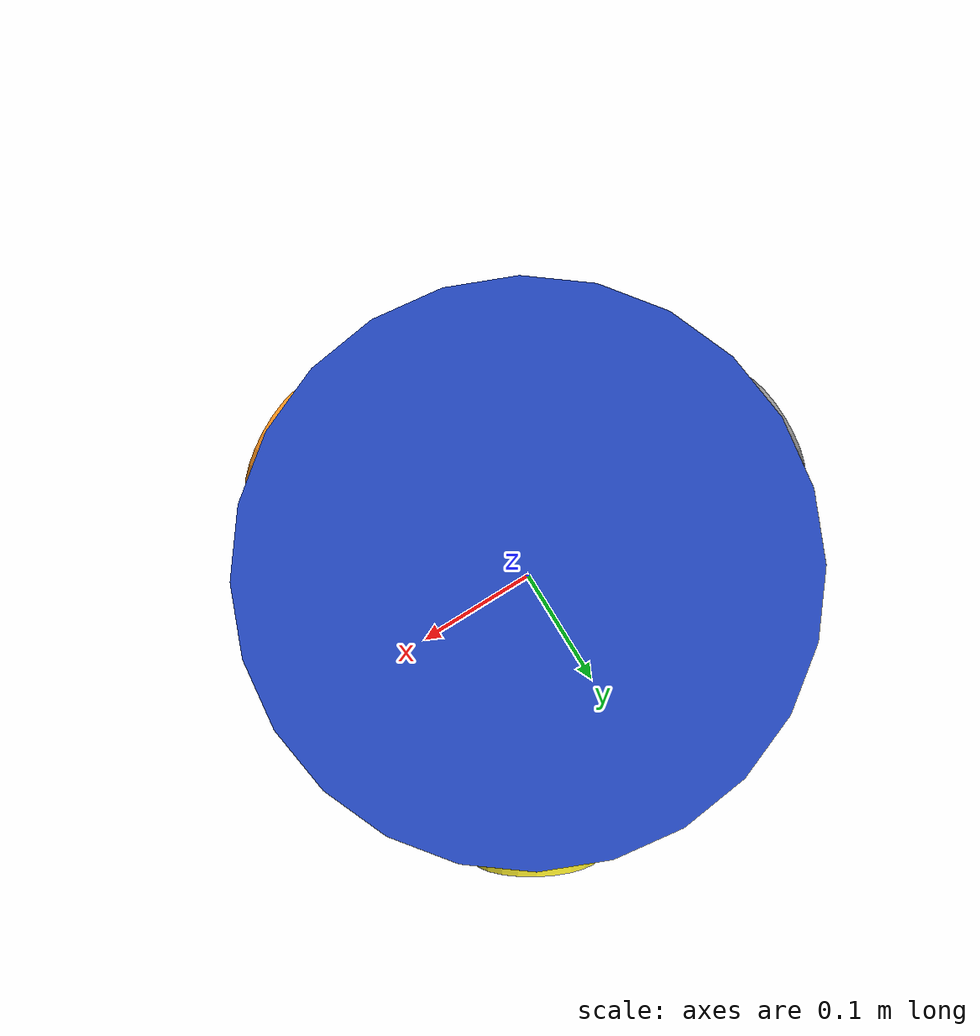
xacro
<?xml version="1.0"?>

<robot xmlns:xacro="http://www.ros.org/wiki/xacro">

    <xacro:property name="base_radius" value="0.18" />
    <xacro:property name="base_length" value="0.15" />
    <xacro:property name="wheel_radius" value="0.05" />
    <xacro:property name="wheel_length" value="0.036" />

    <link name="base_footprint" />

    <link name="base_link">
        <visual>
            <geometry>
                <cylinder radius="${base_radius}" length="${base_length}" />
            </geometry>
            <origin xyz="0.0 0.0 ${base_length / 2.0}" rpy="0.0 0.0 0.0" />
            <material name="blue" />
        </visual>
        <collision>
            <geometry>
                <cylinder radius="${base_radius}" length="${base_length}" />
            </geometry>
            <origin xyz="0 0 ${base_length / 2.0}" rpy="0 0 0" />
        </collision>
        <xacro:cylinder_inertia m="10.0" r="${5*base_radius}" l ="${5*base_length}"
                           xyz="0 0 0" rpy="0 0 0" />
    </link>

    <joint name="base_footprint_base_joint" type="fixed">
        <parent link="base_footprint" />
        <child link="base_link" />
        <origin xyz="0.0 0.0 ${wheel_radius}" rpy="0.0 0.0 0.0" />
    </joint>

    <xacro:macro name="wheel_link" params="suffix color">
        <link name="wheel_${suffix}_link">
            <visual>
                <geometry>
                    <cylinder radius="${wheel_radius}" length="${wheel_length}" />
                </geometry>
                <origin xyz="0 0 ${-1*wheel_length / 2.0}" rpy="0 0 0" />
                <material name="${color}" />
            </visual>
            <collision>
                <geometry>
                    <cylinder radius="${wheel_radius}" length="${wheel_length}" />
                </geometry>
                <origin xyz="0 0 ${-1*wheel_length / 2.0}" rpy="0 0 0" />
            </collision>
            <xacro:cylinder_inertia m="0.33" r="${2*wheel_radius}" l="${2*cd ..wheel_length}"
                                    xyz="0 0 0" rpy="${pi / 2.0} 0 0" />
        </link>
    </xacro:macro>

    <xacro:wheel_link suffix="1" color="grey" />

    <xacro:wheel_link suffix="2" color="orange"/>

    <xacro:wheel_link suffix="3" color="yellow"/>

    <joint name="base_wheel_1_joint" type="continuous">
        <parent link="base_link" />
        <child link="wheel_1_link" />
        <origin xyz = "${base_radius*-1} 0 0" rpy="0 ${pi/2.0} 0" />
        <axis xyz="0 0 1" />
    </joint>

    <joint name="base_wheel_3_joint" type="continuous">
        <parent link="base_link" />
        <child link="wheel_3_link" />
        <origin xyz="${base_radius * 0.5} ${base_radius * 0.866} 0" rpy="0 ${pi/2.0} ${(4.0 * pi) / 3.0}" />
        <axis xyz="0 0 1" />
    </joint>

    <joint name="base_wheel_2_joint" type="continuous">
        <parent link="base_link" />
        <child link="wheel_2_link" />
        <origin xyz="${base_radius * 0.5} ${base_radius * -0.866} 0" rpy="0 ${pi/2.0} ${(2.0 * pi) / 3.0}" />
        <axis xyz="0 0 1" />
    </joint>

</robot>
